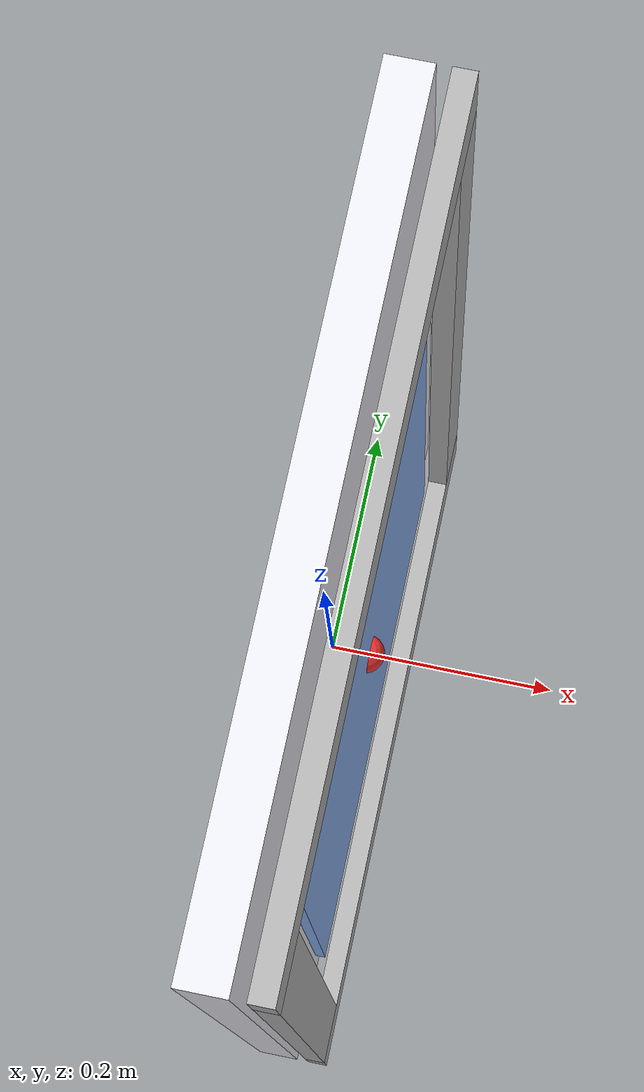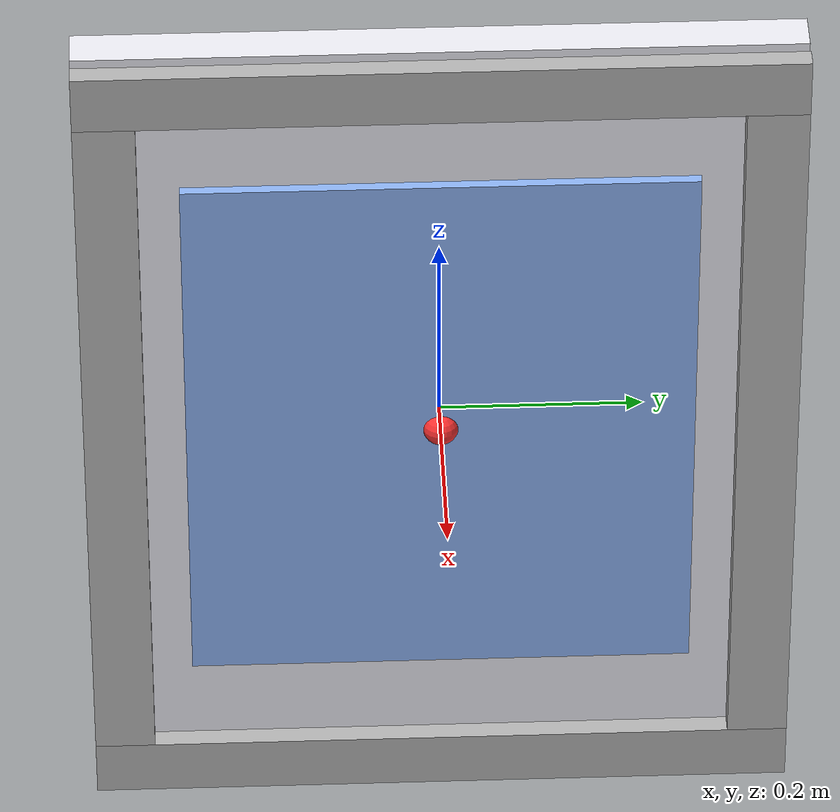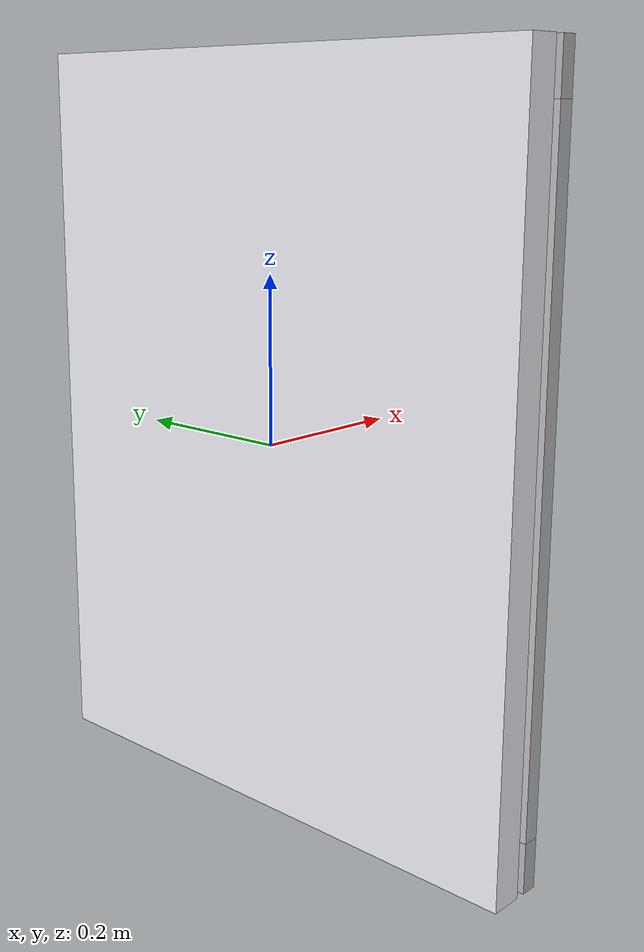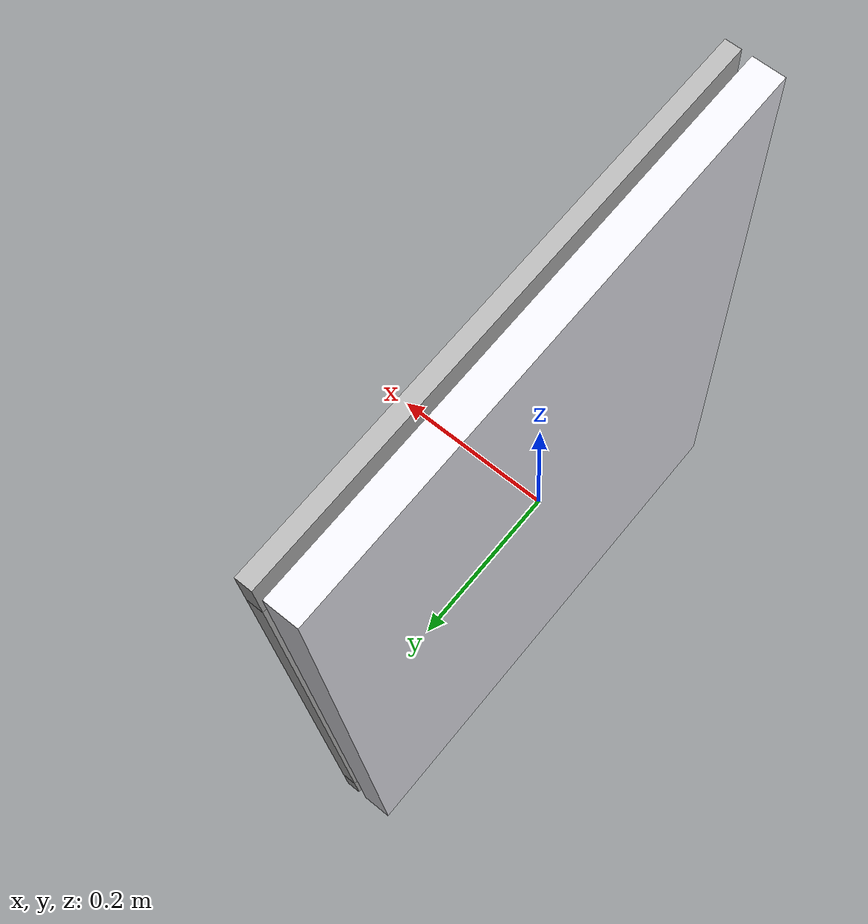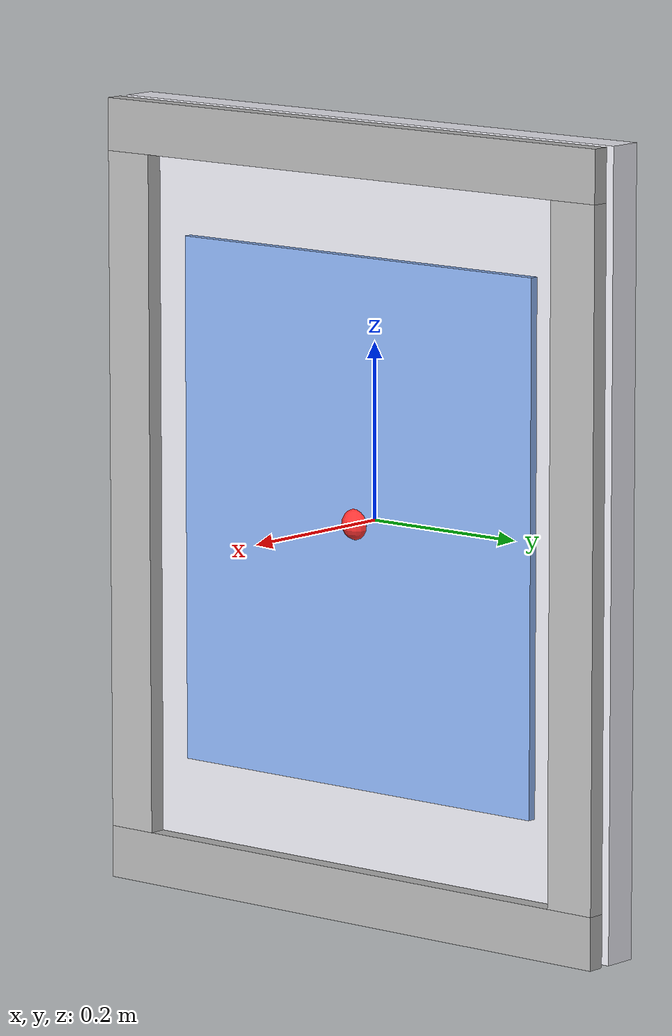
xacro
<?xml version="1.0"?>
<robot name="door_panel" xmlns:xacro="http://ros.org/wiki/xacro">

  <link name="door_link">

    <inertial>
      <origin xyz="0 0 0" rpy="0 0 0"/>
      <mass value="8.0"/>
      <inertia ixx="0.2" ixy="0.0" ixz="0.0"
               iyy="0.2" iyz="0.0"
               izz="0.2"/>
    </inertial>

    <visual>
      <origin xyz="0 0 0" rpy="0 0 0"/>
      <geometry>
        <box size="0.04 0.70 0.90"/>
      </geometry>
      <material name="door_main_white">
        <color rgba="0.92 0.92 0.95 1.0"/>
      </material>
    </visual>

    <collision>
      <origin xyz="0 0 0" rpy="0 0 0"/>
      <geometry>
        <box size="0.04 0.90 1.20"/>
      </geometry>
    </collision>
  </link>

  <link name="door_top_frame">
    <visual>
      <origin xyz="0.012 0 0" rpy="0 0 0"/>
      <geometry>
        <box size="0.02 0.70 0.06"/>
      </geometry>
      <material name="door_frame_gray">
        <color rgba="0.7 0.7 0.7 1.0"/>
      </material>
    </visual>
  </link>

  <joint name="door_top_frame_joint" type="fixed">
    <parent link="door_link"/>
    <child link="door_top_frame"/>
    <origin xyz="0.03 0 0.42" rpy="0 0 0"/>
  </joint>

  <link name="door_bottom_frame">
    <visual>
      <origin xyz="0.012 0 0" rpy="0 0 0"/>
      <geometry>
        <box size="0.02 0.70 0.06"/>
      </geometry>
      <material name="door_frame_gray2">
        <color rgba="0.7 0.7 0.7 1.0"/>
      </material>
    </visual>
  </link>

  <joint name="door_bottom_frame_joint" type="fixed">
    <parent link="door_link"/>
    <child link="door_bottom_frame"/>
    <origin xyz="0.03 0 -0.42" rpy="0 0 0"/>
  </joint>

  <link name="door_left_frame">
    <visual>
      <origin xyz="0.012 0 0" rpy="0 0 0"/>
      <geometry>
        <box size="0.02 0.06 0.78"/>
      </geometry>
      <material name="door_frame_gray3">
        <color rgba="0.72 0.72 0.72 1.0"/>
      </material>
    </visual>
  </link>

  <joint name="door_left_frame_joint" type="fixed">
    <parent link="door_link"/>
    <child link="door_left_frame"/>
    <origin xyz="0.03 -0.32 0" rpy="0 0 0"/>
  </joint>

  <link name="door_right_frame">
    <visual>
      <origin xyz="0.012 0 0" rpy="0 0 0"/>
      <geometry>
        <box size="0.02 0.06 0.78"/>
      </geometry>
      <material name="door_frame_gray4">
        <color rgba="0.72 0.72 0.72 1.0"/>
      </material>
    </visual>
  </link>

  <joint name="door_right_frame_joint" type="fixed">
    <parent link="door_link"/>
    <child link="door_right_frame"/>
    <origin xyz="0.03 0.32 0" rpy="0 0 0"/>
  </joint>

  <link name="door_surface_patch">
    <visual>
      <origin xyz="0.005 0 0" rpy="0 0 0"/>
      <geometry>
        <box size="0.01 0.50 0.60"/>
      </geometry>
      <material name="door_patch_blue">
        <color rgba="0.55 0.70 0.95 1.0"/>
      </material>
    </visual>
  </link>

  <joint name="door_surface_patch_joint" type="fixed">
    <parent link="door_link"/>
    <child link="door_surface_patch"/>
    <origin xyz="0.025 0 0.00" rpy="0 0 0"/>
  </joint>

  <link name="door_center_marker">
    <visual>
      <origin xyz="0 0 0" rpy="0 0 0"/>
      <geometry>
        <sphere radius="0.018"/>
      </geometry>
      <material name="door_center_red">
        <color rgba="1.0 0.2 0.2 1.0"/>
      </material>
    </visual>
  </link>

  <joint name="door_center_marker_joint" type="fixed">
    <parent link="door_link"/>
    <child link="door_center_marker"/>
    <origin xyz="0.03 0 0" rpy="0 0 0"/>
  </joint>

  <gazebo reference="door_link">
    <material>Gazebo/White</material>
    <mu1>0.8</mu1>
    <mu2>0.8</mu2>
  </gazebo>

  <gazebo reference="door_surface_patch">
    <material>Gazebo/SkyBlue</material>
  </gazebo>

</robot>
